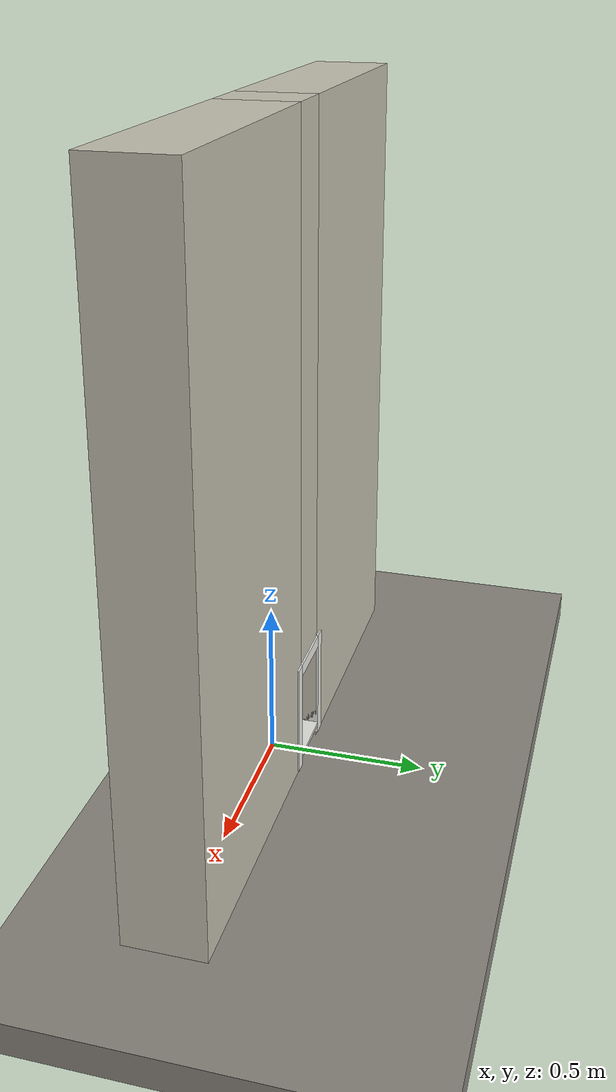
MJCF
<?xml version="1.0" ?>
<mujoco model="db0892_pet_door_full">
  <compiler angle="radian" meshdir="../../hardware" texturedir="../../textures" autolimits="true" inertiafromgeom="false"/>
  <option timestep="0.002" integrator="implicitfast" cone="elliptic" impratio="10" noslip_iterations="3">
    <flag multiccd="enable"/>
  </option>
  <size memory="16M"/>
  <default>
    <geom condim="4" solref="0.005 1" solimp="0.95 0.99 0.001"/>
    <joint solreflimit="0.005 1" solimplimit="0.95 0.99 0.001"/>
    <tendon solreflimit="0.005 1"/>
    <equality solref="0.002 1"/>
  </default>
  <visual>
    <headlight ambient="0.4 0.4 0.4" diffuse="0.7 0.7 0.7" specular="0.2 0.2 0.2"/>
    <quality shadowsize="4096"/>
    <map znear="0.01" zfar="60"/>
  </visual>
  <asset>
    <material name="mat_floor" rgba="0.55 0.53 0.5 1" specular="0.2" shininess="0.15" reflectance="0"/>
    <material name="mat_wall" rgba="0.78 0.76 0.7 1" specular="0.2" shininess="0.1" reflectance="0"/>
    <material name="mat_frame" rgba="0.92 0.92 0.9 1" specular="0.2" shininess="0.6" reflectance="0"/>
    <material name="mat_flap" rgba="0.85 0.9 0.95 0.45" specular="0.2" shininess="0.7" reflectance="0.1"/>
    <material name="mat_magnet" rgba="0.55 0.56 0.58 1" specular="0.8" shininess="0.55" reflectance="0.4"/>
    <texture name="skybox" type="skybox" builtin="gradient" rgb1="0.6 0.7 0.85" rgb2="0.9 0.92 0.95" width="256" height="256"/>
  </asset>
  <worldbody>
    <light name="sun" pos="1.5 -2.5 4" dir="-0.3 0.5 -0.8" directional="true" diffuse="0.8 0.8 0.8" specular="0.3 0.3 0.3" castshadow="true"/>
    <light name="fill" pos="-1.5 2.5 3" dir="0.3 -0.5 -0.7" directional="true" diffuse="0.35 0.35 0.4" castshadow="false"/>
    <camera name="robot_view" pos="0 -1.875 0.67" xyaxes="1 0 0 0 0.26963 0.962964" fovy="52"/>
    <camera name="far_view" pos="0 1.875 0.67" xyaxes="-1 0 0 0 -0.26963 0.962964" fovy="52"/>
    <camera name="iso" pos="1.425 -1.575 0.97" xyaxes="0.741536 0.670913 0 -0.242917 0.268487 0.932151" fovy="46"/>
    <camera name="detail_handle" pos="0.48 -0.8 0.475" xyaxes="0.97561 0.219512 0 -0.070934 0.315262 0.94635" fovy="38"/>
    <geom name="floor" type="box" size="6 6 0.05" pos="0 0 -0.05" material="mat_floor" group="0" contype="1" conaffinity="1" friction="0.8 0.005 0.0001" density="2400"/>
    <geom name="wall_left" type="box" size="0.4525 0.125 1.05" pos="-0.5475 0 1.05" material="mat_wall" group="0" contype="1" conaffinity="1" friction="0.6 0.005 0.0001" density="800"/>
    <geom name="wall_right" type="box" size="0.4525 0.125 1.05" pos="0.5475 0 1.05" material="mat_wall" group="0" contype="1" conaffinity="1" friction="0.6 0.005 0.0001" density="800"/>
    <geom name="wall_header" type="box" size="0.095 0.125 0.88" pos="0 0 1.22" material="mat_wall" group="0" contype="1" conaffinity="1" friction="0.6 0.005 0.0001" density="800"/>
    <geom name="pet_frame_l" type="box" size="0.02 0.131 0.185" pos="-0.115 0 0.195" material="mat_frame" group="0" contype="1" conaffinity="1" friction="0.6 0.005 0.0001" density="1200"/>
    <geom name="pet_frame_r" type="box" size="0.02 0.131 0.185" pos="0.115 0 0.195" material="mat_frame" group="0" contype="1" conaffinity="1" friction="0.6 0.005 0.0001" density="1200"/>
    <geom name="pet_frame_t" type="box" size="0.095 0.131 0.02" pos="0 0 0.36" material="mat_frame" group="0" contype="1" conaffinity="1" friction="0.6 0.005 0.0001" density="1200"/>
    <geom name="pet_sill" type="box" size="0.095 0.131 0.006" pos="0 0 0.044" material="mat_frame" group="0" contype="1" conaffinity="1" friction="0.6 0.005 0.0001" density="1200"/>
    <geom name="sill_magnet" type="box" size="0.07 0.002 0.008" pos="0 -0.005 0.06" material="mat_magnet" group="1" contype="0" conaffinity="0" density="7850"/>
    <site name="approach_point" pos="0 -1 0" quat="1 0 0 0" size="0.05" rgba="0.2 0.9 0.2 0.5" group="4"/>
    <site name="goal_point" pos="0 1 0" quat="1 0 0 0" size="0.05" rgba="0.2 0.9 0.2 0.5" group="4"/>
    <site name="door_plane_center" pos="0 0 0.195" quat="1 0 0 0" size="0.02" rgba="0.2 0.9 0.2 0.5" group="4"/>
    <body name="flap" pos="0 0 0.334">
      <inertial pos="0 0 -0.163345" mass="0.482" quat="-0.5 0.5 0.5 0.5" diaginertia="0.001139866 0.003713031 0.004851323"/>
      <joint name="flap_hinge" type="hinge" axis="1 0 0" limited="true" range="-1.308997 1.308997" damping="0.010053" frictionloss="0.024078" armature="0.02"/>
      <geom name="flap_geom" type="box" size="0.087 0.002 0.138" pos="0 0 -0.14" material="mat_flap" group="0" contype="1" conaffinity="1" friction="0.6 0.005 0.0001" density="1"/>
      <geom name="flap_magnet" type="box" size="0.07 0.003 0.008" pos="0 0 -0.27" material="mat_magnet" group="1" contype="0" conaffinity="0" density="7850"/>
    </body>
  </worldbody>
  <equality>
    <weld name="pet_lock_panel_hold" body1="flap" body2="world" active="true"/>
  </equality>
  <sensor>
    <jointpos name="flap_hinge_pos" joint="flap_hinge"/>
    <jointvel name="flap_hinge_vel" joint="flap_hinge"/>
  </sensor>
</mujoco>
